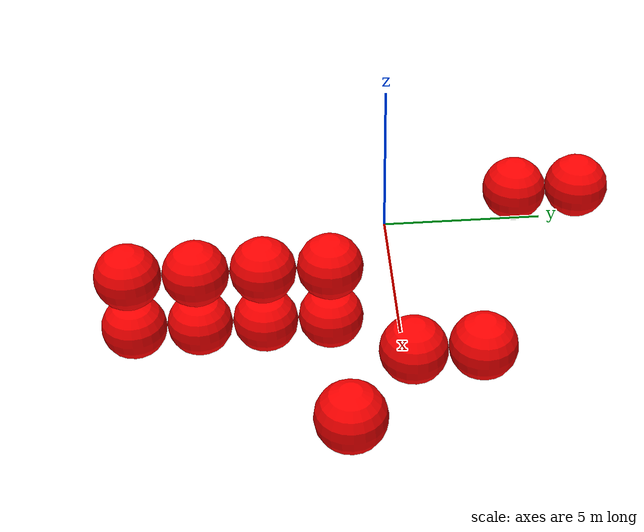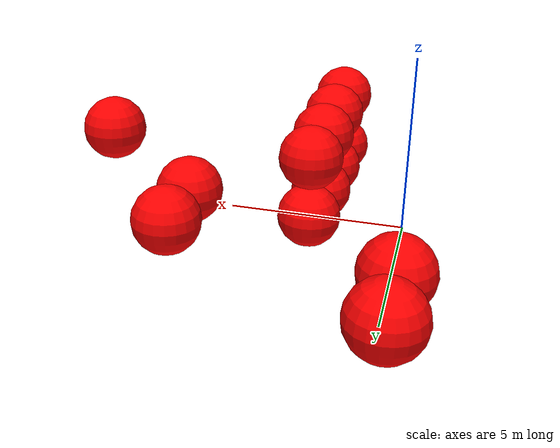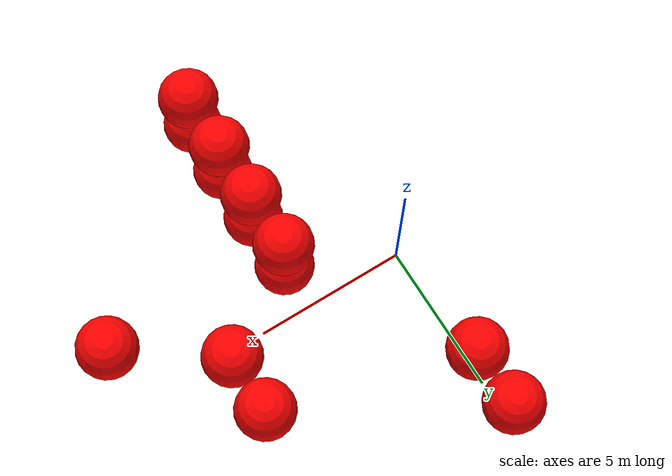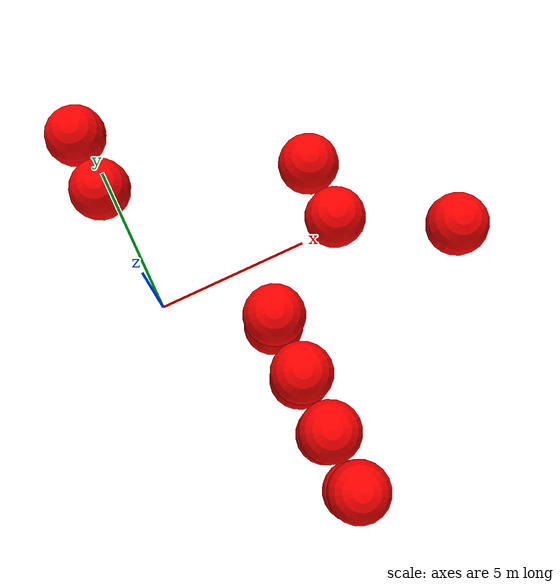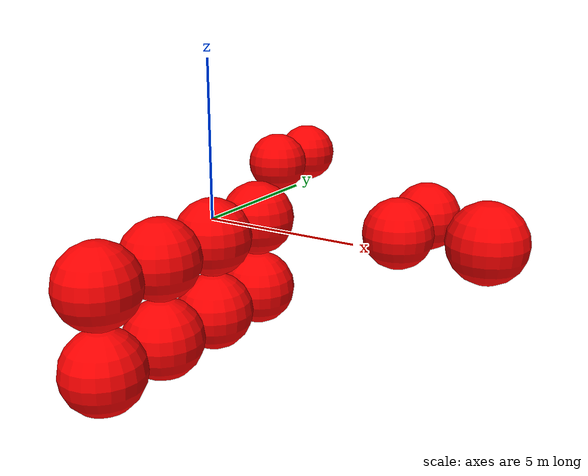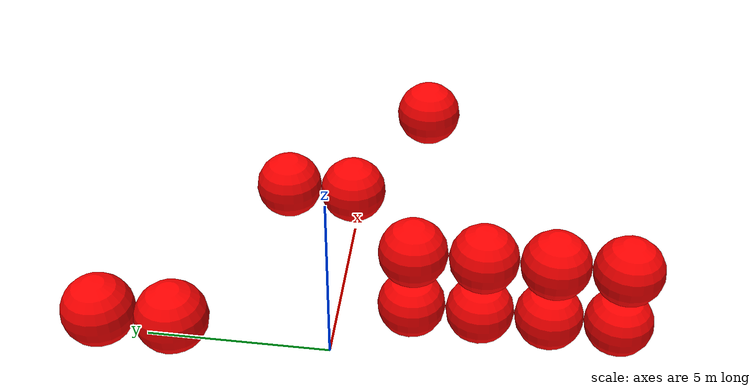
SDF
<sdf version="1.8">
 <world name="3d_world">
  <model name="obstacle_1" canonical_link="obstacle">
   <static>true</static>
   <pose relative_to="world">3.06 -7.92 -1.00 0 0 0</pose>
   <link name="obstacle">
    <pose relative_to="__model__">0.0 0 0.0 0 0 0</pose>
    <visual name="visual">
     <geometry><sphere><radius>1.00</radius></sphere></geometry>
     <material>
      <ambient>1.0 0.0 0.0 1</ambient>
      <diffuse>1.0 0.0 0.0 1</diffuse>
      <specular>1.0 0.0 0.0 1</specular>
     </material>
    </visual>
    <collision name="collision"><geometry><sphere><radius>1.00</radius></sphere></geometry></collision>
    <enable_gravity>false</enable_gravity>
   </link>
   <plugin filename="ignition-gazebo-velocity-control-system" name="ignition::gazebo::systems::VelocityControl">
    <initial_linear>0.00 0.00 0.00</initial_linear>
    <initial_angular>0 0 0</initial_angular>
   </plugin>
   <plugin filename="ignition-gazebo-odometry-publisher-system" name="ignition::gazebo::systems::OdometryPublisher">
    <dimensions>3</dimensions>
   </plugin>
  </model>
  <model name="obstacle_2" canonical_link="obstacle">
   <static>true</static>
   <pose relative_to="world">3.06 -5.92 -1.00 0 0 0</pose>
   <link name="obstacle">
    <pose relative_to="__model__">0.0 0 0.0 0 0 0</pose>
    <visual name="visual">
     <geometry><sphere><radius>1.00</radius></sphere></geometry>
     <material>
      <ambient>1.0 0.0 0.0 1</ambient>
      <diffuse>1.0 0.0 0.0 1</diffuse>
      <specular>1.0 0.0 0.0 1</specular>
     </material>
    </visual>
    <collision name="collision"><geometry><sphere><radius>1.00</radius></sphere></geometry></collision>
    <enable_gravity>false</enable_gravity>
   </link>
   <plugin filename="ignition-gazebo-velocity-control-system" name="ignition::gazebo::systems::VelocityControl">
    <initial_linear>0.00 0.00 0.00</initial_linear>
    <initial_angular>0 0 0</initial_angular>
   </plugin>
   <plugin filename="ignition-gazebo-odometry-publisher-system" name="ignition::gazebo::systems::OdometryPublisher">
    <dimensions>3</dimensions>
   </plugin>
  </model>
  <model name="obstacle_3" canonical_link="obstacle">
   <static>true</static>
   <pose relative_to="world">3.06 -3.92 -1.00 0 0 0</pose>
   <link name="obstacle">
    <pose relative_to="__model__">0.0 0 0.0 0 0 0</pose>
    <visual name="visual">
     <geometry><sphere><radius>1.00</radius></sphere></geometry>
     <material>
      <ambient>1.0 0.0 0.0 1</ambient>
      <diffuse>1.0 0.0 0.0 1</diffuse>
      <specular>1.0 0.0 0.0 1</specular>
     </material>
    </visual>
    <collision name="collision"><geometry><sphere><radius>1.00</radius></sphere></geometry></collision>
    <enable_gravity>false</enable_gravity>
   </link>
   <plugin filename="ignition-gazebo-velocity-control-system" name="ignition::gazebo::systems::VelocityControl">
    <initial_linear>0.00 0.00 0.00</initial_linear>
    <initial_angular>0 0 0</initial_angular>
   </plugin>
   <plugin filename="ignition-gazebo-odometry-publisher-system" name="ignition::gazebo::systems::OdometryPublisher">
    <dimensions>3</dimensions>
   </plugin>
  </model>
  <model name="obstacle_4" canonical_link="obstacle">
   <static>true</static>
   <pose relative_to="world">3.06 -1.92 -1.00 0 0 0</pose>
   <link name="obstacle">
    <pose relative_to="__model__">0.0 0 0.0 0 0 0</pose>
    <visual name="visual">
     <geometry><sphere><radius>1.00</radius></sphere></geometry>
     <material>
      <ambient>1.0 0.0 0.0 1</ambient>
      <diffuse>1.0 0.0 0.0 1</diffuse>
      <specular>1.0 0.0 0.0 1</specular>
     </material>
    </visual>
    <collision name="collision"><geometry><sphere><radius>1.00</radius></sphere></geometry></collision>
    <enable_gravity>false</enable_gravity>
   </link>
   <plugin filename="ignition-gazebo-velocity-control-system" name="ignition::gazebo::systems::VelocityControl">
    <initial_linear>0.00 0.00 0.00</initial_linear>
    <initial_angular>0 0 0</initial_angular>
   </plugin>
   <plugin filename="ignition-gazebo-odometry-publisher-system" name="ignition::gazebo::systems::OdometryPublisher">
    <dimensions>3</dimensions>
   </plugin>
  </model>
  <model name="obstacle_5" canonical_link="obstacle">
   <static>true</static>
   <pose relative_to="world">3.06 -7.92 1.00 0 0 0</pose>
   <link name="obstacle">
    <pose relative_to="__model__">0.0 0 0.0 0 0 0</pose>
    <visual name="visual">
     <geometry><sphere><radius>1.00</radius></sphere></geometry>
     <material>
      <ambient>1.0 0.0 0.0 1</ambient>
      <diffuse>1.0 0.0 0.0 1</diffuse>
      <specular>1.0 0.0 0.0 1</specular>
     </material>
    </visual>
    <collision name="collision"><geometry><sphere><radius>1.00</radius></sphere></geometry></collision>
    <enable_gravity>false</enable_gravity>
   </link>
   <plugin filename="ignition-gazebo-velocity-control-system" name="ignition::gazebo::systems::VelocityControl">
    <initial_linear>0.00 0.00 0.00</initial_linear>
    <initial_angular>0 0 0</initial_angular>
   </plugin>
   <plugin filename="ignition-gazebo-odometry-publisher-system" name="ignition::gazebo::systems::OdometryPublisher">
    <dimensions>3</dimensions>
   </plugin>
  </model>
  <model name="obstacle_6" canonical_link="obstacle">
   <static>true</static>
   <pose relative_to="world">3.06 -5.92 1.00 0 0 0</pose>
   <link name="obstacle">
    <pose relative_to="__model__">0.0 0 0.0 0 0 0</pose>
    <visual name="visual">
     <geometry><sphere><radius>1.00</radius></sphere></geometry>
     <material>
      <ambient>1.0 0.0 0.0 1</ambient>
      <diffuse>1.0 0.0 0.0 1</diffuse>
      <specular>1.0 0.0 0.0 1</specular>
     </material>
    </visual>
    <collision name="collision"><geometry><sphere><radius>1.00</radius></sphere></geometry></collision>
    <enable_gravity>false</enable_gravity>
   </link>
   <plugin filename="ignition-gazebo-velocity-control-system" name="ignition::gazebo::systems::VelocityControl">
    <initial_linear>0.00 0.00 0.00</initial_linear>
    <initial_angular>0 0 0</initial_angular>
   </plugin>
   <plugin filename="ignition-gazebo-odometry-publisher-system" name="ignition::gazebo::systems::OdometryPublisher">
    <dimensions>3</dimensions>
   </plugin>
  </model>
  <model name="obstacle_7" canonical_link="obstacle">
   <static>true</static>
   <pose relative_to="world">3.06 -3.92 1.00 0 0 0</pose>
   <link name="obstacle">
    <pose relative_to="__model__">0.0 0 0.0 0 0 0</pose>
    <visual name="visual">
     <geometry><sphere><radius>1.00</radius></sphere></geometry>
     <material>
      <ambient>1.0 0.0 0.0 1</ambient>
      <diffuse>1.0 0.0 0.0 1</diffuse>
      <specular>1.0 0.0 0.0 1</specular>
     </material>
    </visual>
    <collision name="collision"><geometry><sphere><radius>1.00</radius></sphere></geometry></collision>
    <enable_gravity>false</enable_gravity>
   </link>
   <plugin filename="ignition-gazebo-velocity-control-system" name="ignition::gazebo::systems::VelocityControl">
    <initial_linear>0.00 0.00 0.00</initial_linear>
    <initial_angular>0 0 0</initial_angular>
   </plugin>
   <plugin filename="ignition-gazebo-odometry-publisher-system" name="ignition::gazebo::systems::OdometryPublisher">
    <dimensions>3</dimensions>
   </plugin>
  </model>
  <model name="obstacle_8" canonical_link="obstacle">
   <static>true</static>
   <pose relative_to="world">3.06 -1.92 1.00 0 0 0</pose>
   <link name="obstacle">
    <pose relative_to="__model__">0.0 0 0.0 0 0 0</pose>
    <visual name="visual">
     <geometry><sphere><radius>1.00</radius></sphere></geometry>
     <material>
      <ambient>1.0 0.0 0.0 1</ambient>
      <diffuse>1.0 0.0 0.0 1</diffuse>
      <specular>1.0 0.0 0.0 1</specular>
     </material>
    </visual>
    <collision name="collision"><geometry><sphere><radius>1.00</radius></sphere></geometry></collision>
    <enable_gravity>false</enable_gravity>
   </link>
   <plugin filename="ignition-gazebo-velocity-control-system" name="ignition::gazebo::systems::VelocityControl">
    <initial_linear>0.00 0.00 0.00</initial_linear>
    <initial_angular>0 0 0</initial_angular>
   </plugin>
   <plugin filename="ignition-gazebo-odometry-publisher-system" name="ignition::gazebo::systems::OdometryPublisher">
    <dimensions>3</dimensions>
   </plugin>
  </model>
  <model name="obstacle_21" canonical_link="obstacle">
   <static>true</static>
   <pose relative_to="world">-0.25 4.16 1.00 0 0 0</pose>
   <link name="obstacle">
    <pose relative_to="__model__">0.0 0 0.0 0 0 0</pose>
    <visual name="visual">
     <geometry><sphere><radius>1.00</radius></sphere></geometry>
     <material>
      <ambient>1.0 0.0 0.0 1</ambient>
      <diffuse>1.0 0.0 0.0 1</diffuse>
      <specular>1.0 0.0 0.0 1</specular>
     </material>
    </visual>
    <collision name="collision"><geometry><sphere><radius>1.00</radius></sphere></geometry></collision>
    <enable_gravity>false</enable_gravity>
   </link>
   <plugin filename="ignition-gazebo-velocity-control-system" name="ignition::gazebo::systems::VelocityControl">
    <initial_linear>0.00 0.00 0.00</initial_linear>
    <initial_angular>0 0 0</initial_angular>
   </plugin>
   <plugin filename="ignition-gazebo-odometry-publisher-system" name="ignition::gazebo::systems::OdometryPublisher">
    <dimensions>3</dimensions>
   </plugin>
  </model>
  <model name="obstacle_22" canonical_link="obstacle">
   <static>true</static>
   <pose relative_to="world">-0.25 6.16 1.00 0 0 0</pose>
   <link name="obstacle">
    <pose relative_to="__model__">0.0 0 0.0 0 0 0</pose>
    <visual name="visual">
     <geometry><sphere><radius>1.00</radius></sphere></geometry>
     <material>
      <ambient>1.0 0.0 0.0 1</ambient>
      <diffuse>1.0 0.0 0.0 1</diffuse>
      <specular>1.0 0.0 0.0 1</specular>
     </material>
    </visual>
    <collision name="collision"><geometry><sphere><radius>1.00</radius></sphere></geometry></collision>
    <enable_gravity>false</enable_gravity>
   </link>
   <plugin filename="ignition-gazebo-velocity-control-system" name="ignition::gazebo::systems::VelocityControl">
    <initial_linear>0.00 0.00 0.00</initial_linear>
    <initial_angular>0 0 0</initial_angular>
   </plugin>
   <plugin filename="ignition-gazebo-odometry-publisher-system" name="ignition::gazebo::systems::OdometryPublisher">
    <dimensions>3</dimensions>
   </plugin>
  </model>
  <model name="obstacle_23" canonical_link="obstacle">
   <static>false</static>
   <pose relative_to="world">9.48 -1.79 1.33 0 0 0</pose>
   <link name="obstacle">
    <pose relative_to="__model__">0.0 0 0.0 0 0 0</pose>
    <visual name="visual">
     <geometry><sphere><radius>1.00</radius></sphere></geometry>
     <material>
      <ambient>1.0 0.0 0.0 1</ambient>
      <diffuse>1.0 0.0 0.0 1</diffuse>
      <specular>1.0 0.0 0.0 1</specular>
     </material>
    </visual>
    <collision name="collision"><geometry><sphere><radius>1.00</radius></sphere></geometry></collision>
    <enable_gravity>false</enable_gravity>
   </link>
   <plugin filename="ignition-gazebo-velocity-control-system" name="ignition::gazebo::systems::VelocityControl">
    <initial_linear>0.00 0.95 -0.68</initial_linear>
    <initial_angular>0 0 0</initial_angular>
   </plugin>
   <plugin filename="ignition-gazebo-odometry-publisher-system" name="ignition::gazebo::systems::OdometryPublisher">
    <dimensions>3</dimensions>
   </plugin>
  </model>
  <model name="obstacle_24" canonical_link="obstacle">
   <static>false</static>
   <pose relative_to="world">6.27 0.24 0.49 0 0 0</pose>
   <link name="obstacle">
    <pose relative_to="__model__">0.0 0 0.0 0 0 0</pose>
    <visual name="visual">
     <geometry><sphere><radius>1.00</radius></sphere></geometry>
     <material>
      <ambient>1.0 0.0 0.0 1</ambient>
      <diffuse>1.0 0.0 0.0 1</diffuse>
      <specular>1.0 0.0 0.0 1</specular>
     </material>
    </visual>
    <collision name="collision"><geometry><sphere><radius>1.00</radius></sphere></geometry></collision>
    <enable_gravity>false</enable_gravity>
   </link>
   <plugin filename="ignition-gazebo-velocity-control-system" name="ignition::gazebo::systems::VelocityControl">
    <initial_linear>0.00 -1.32 -0.82</initial_linear>
    <initial_angular>0 0 0</initial_angular>
   </plugin>
   <plugin filename="ignition-gazebo-odometry-publisher-system" name="ignition::gazebo::systems::OdometryPublisher">
    <dimensions>3</dimensions>
   </plugin>
  </model>
  <model name="obstacle_25" canonical_link="obstacle">
   <static>false</static>
   <pose relative_to="world">6.27 2.24 0.49 0 0 0</pose>
   <link name="obstacle">
    <pose relative_to="__model__">0.0 0 0.0 0 0 0</pose>
    <visual name="visual">
     <geometry><sphere><radius>1.00</radius></sphere></geometry>
     <material>
      <ambient>1.0 0.0 0.0 1</ambient>
      <diffuse>1.0 0.0 0.0 1</diffuse>
      <specular>1.0 0.0 0.0 1</specular>
     </material>
    </visual>
    <collision name="collision"><geometry><sphere><radius>1.00</radius></sphere></geometry></collision>
    <enable_gravity>false</enable_gravity>
   </link>
   <plugin filename="ignition-gazebo-velocity-control-system" name="ignition::gazebo::systems::VelocityControl">
    <initial_linear>0.00 -1.32 -0.82</initial_linear>
    <initial_angular>0 0 0</initial_angular>
   </plugin>
   <plugin filename="ignition-gazebo-odometry-publisher-system" name="ignition::gazebo::systems::OdometryPublisher">
    <dimensions>3</dimensions>
   </plugin>
  </model>
 </world>
</sdf>
